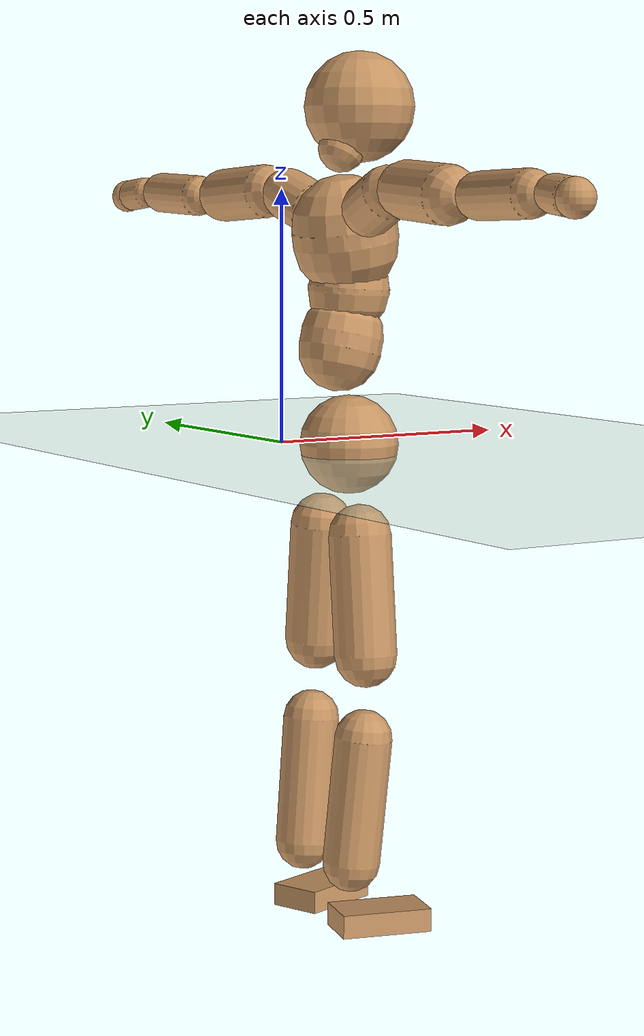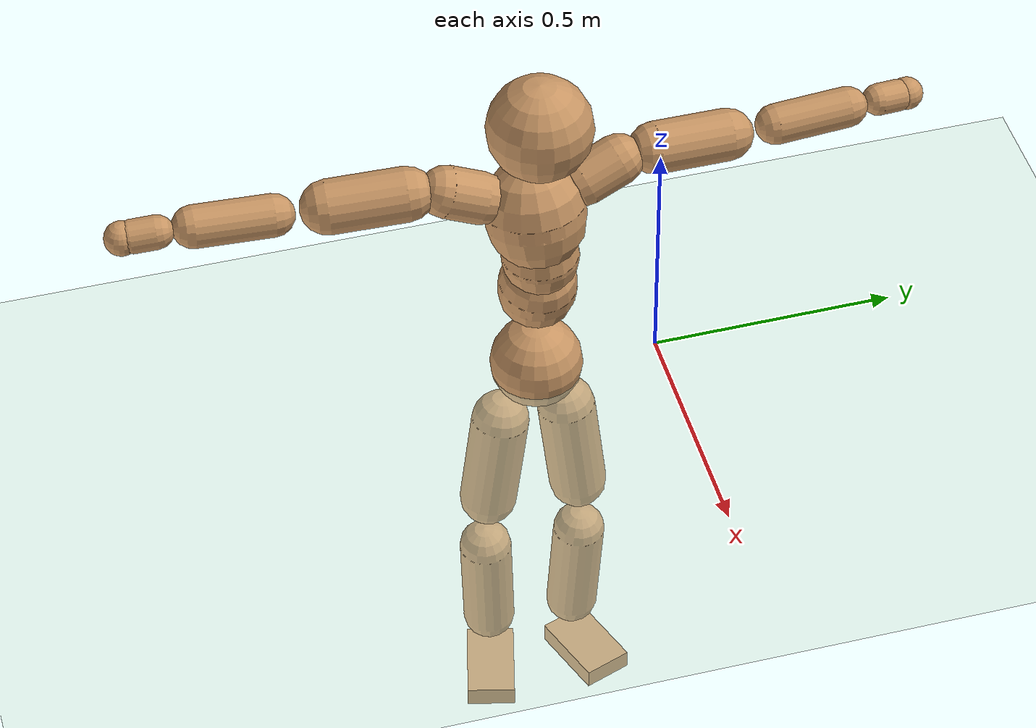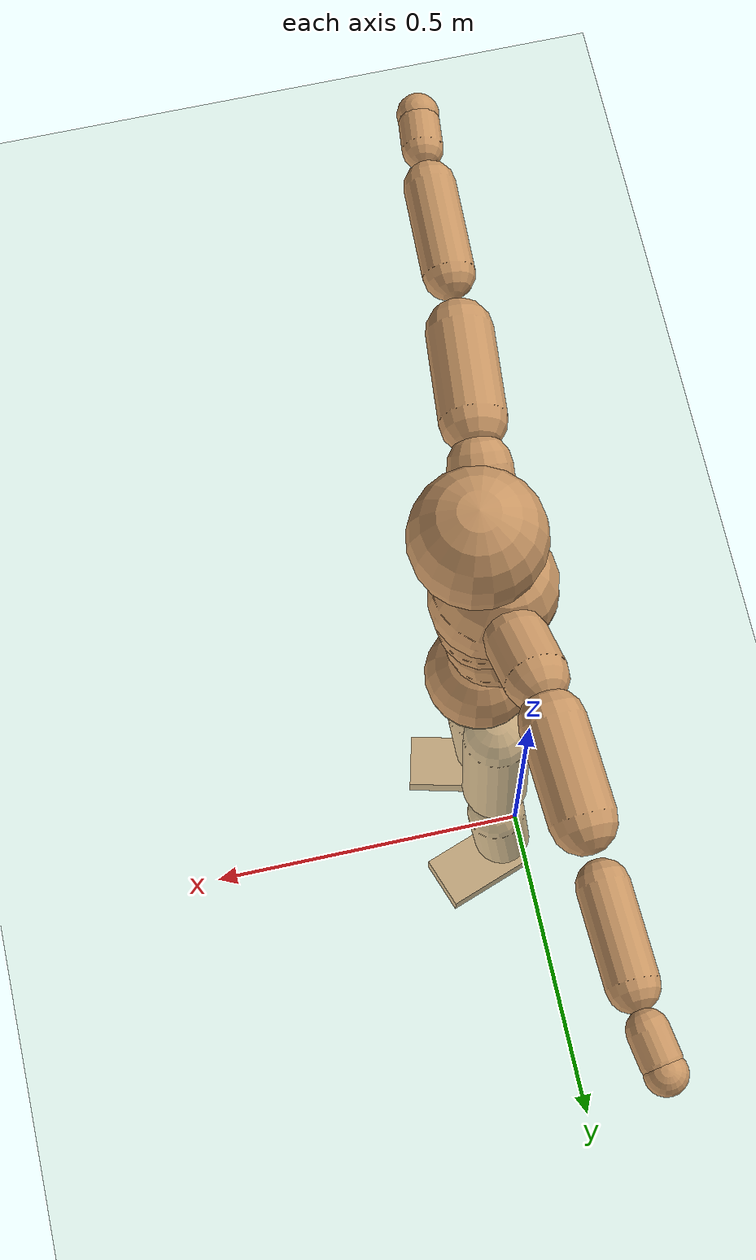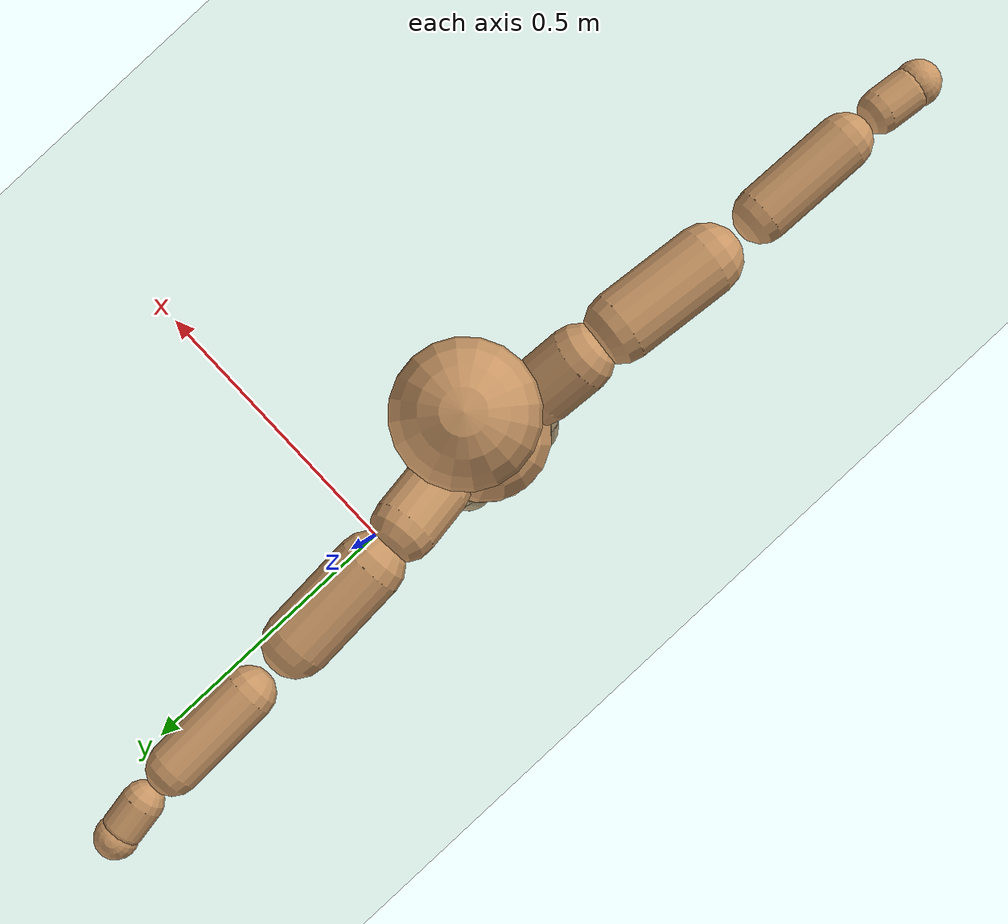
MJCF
<mujoco model="humanoid">
  <compiler coordinate="local" angle="radian"/>
  <default>
    <joint damping="0.0" armature="0.01" stiffness="0.0" limited="true"/>
    <geom conaffinity="1" condim="3" contype="7" margin="0.001" rgba="0.8 0.6 .4 1"/>
  </default>
  <asset>
    <texture type="skybox" builtin="gradient" rgb1=".4 .5 .6" rgb2="0 0 0" width="100" height="100"/>
    <texture builtin="flat" height="1278" mark="cross" markrgb="1 1 1" name="texgeom" random="0.01" rgb1="0.8 0.6 0.4" rgb2="0.8 0.6 0.4" type="cube" width="127"/>
    <texture builtin="checker" height="100" name="texplane" rgb1="0 0 0" rgb2="0.8 0.8 0.8" type="2d" width="100"/>
    <material name="MatPlane" reflectance="0.5" shininess="1" specular="1" texrepeat="60 60" texture="texplane"/>
    <material name="geom" texture="texgeom" texuniform="true"/>
  </asset>
  <worldbody>
    <light cutoff="100" diffuse="1 1 1" dir="-0 0 -1.3" directional="true" exponent="1" pos="0 0 1.3" specular=".1 .1 .1"/>
    <geom conaffinity="1" condim="3" name="floor" pos="0 0 0" rgba="0.8 0.9 0.8 1" size="100 100 .2" type="plane" material="MatPlane"/>
    <body name="Pelvis" pos="0.0025 -0.25 0.0184">
      <freejoint name="Pelvis"/>
      <geom type="sphere" contype="1" conaffinity="1" density="500" size="0.0945" pos="0.0000 0.0000 0.0000" name="Pelvis"/>
      <body name="L_Hip" pos="-0.0205 0.0595 -0.0828">
        <joint name="L_Hip_x" type="hinge" pos="0 0 0" axis="1 0 0" stiffness="800" damping="80" armature="0.02" range="-180.0000 180.0000"/>
        <joint name="L_Hip_y" type="hinge" pos="0 0 0" axis="0 1 0" stiffness="800" damping="80" armature="0.02" range="-180.0000 180.0000"/>
        <joint name="L_Hip_z" type="hinge" pos="0 0 0" axis="0 0 1" stiffness="800" damping="80" armature="0.02" range="-180.0000 180.0000"/>
        <geom type="capsule" contype="1" conaffinity="1" density="500" fromto="0.0008 0.0087 -0.0762 0.0032 0.0348 -0.3047" size="0.0596" name="L_Hip"/>
        <body name="L_Knee" pos="0.0039 0.0434 -0.3809">
          <joint name="L_Knee_x" type="hinge" pos="0 0 0" axis="1 0 0" stiffness="800" damping="80" armature="0.02" range="-180.0000 180.0000"/>
          <joint name="L_Knee_y" type="hinge" pos="0 0 0" axis="0 1 0" stiffness="800" damping="80" armature="0.02" range="-180.0000 180.0000"/>
          <joint name="L_Knee_z" type="hinge" pos="0 0 0" axis="0 0 1" stiffness="800" damping="80" armature="0.02" range="-180.0000 180.0000"/>
          <geom type="capsule" contype="1" conaffinity="1" density="500" fromto="-0.0075 -0.0027 -0.0812 -0.0300 -0.0108 -0.3247" size="0.0542" name="L_Knee"/>
          <body name="L_Ankle" pos="-0.0375 -0.0136 -0.4059">
            <joint name="L_Ankle_x" type="hinge" pos="0 0 0" axis="1 0 0" stiffness="800" damping="80" armature="0.02" range="-180.0000 180.0000"/>
            <joint name="L_Ankle_y" type="hinge" pos="0 0 0" axis="0 1 0" stiffness="800" damping="80" armature="0.02" range="-180.0000 180.0000"/>
            <joint name="L_Ankle_z" type="hinge" pos="0 0 0" axis="0 0 1" stiffness="800" damping="80" armature="0.02" range="-180.0000 180.0000"/>
            <geom type="box" contype="1" conaffinity="1" density="500" pos="0.0593 0.0212 -0.0292" size="0.0833 0.0514 0.0214" quat="0.9853 0.0000 0.0000 0.1706" name="L_Ankle"/>
            <body name="L_Toe" pos="0.1185 0.0423 -0.0584">
              <joint name="L_Toe_x" type="hinge" pos="0 0 0" axis="1 0 0" stiffness="500" damping="50" armature="0.02" range="-180.0000 180.0000"/>
              <joint name="L_Toe_y" type="hinge" pos="0 0 0" axis="0 1 0" stiffness="500" damping="50" armature="0.02" range="-180.0000 180.0000"/>
              <joint name="L_Toe_z" type="hinge" pos="0 0 0" axis="0 0 1" stiffness="500" damping="50" armature="0.02" range="-180.0000 180.0000"/>
              <geom type="box" contype="1" conaffinity="1" density="500" pos="0.0000 0.0000 0.0297" size="0.001 0.0024 0.0011" quat="0.9845 0.0000 0.0000 0.1753" name="L_Toe"/>
            </body>
          </body>
        </body>
      </body>
      <body name="R_Hip" pos="-0.0182 -0.0617 -0.0903">
        <joint name="R_Hip_x" type="hinge" pos="0 0 0" axis="1 0 0" stiffness="800" damping="80" armature="0.02" range="-180.0000 180.0000"/>
        <joint name="R_Hip_y" type="hinge" pos="0 0 0" axis="0 1 0" stiffness="800" damping="80" armature="0.02" range="-180.0000 180.0000"/>
        <joint name="R_Hip_z" type="hinge" pos="0 0 0" axis="0 0 1" stiffness="800" damping="80" armature="0.02" range="-180.0000 180.0000"/>
        <geom type="capsule" contype="1" conaffinity="1" density="500" fromto="-0.0011 -0.0090 -0.0755 -0.0046 -0.0359 -0.3022" size="0.0594" name="R_Hip"/>
        <body name="R_Knee" pos="-0.0057 -0.0449 -0.3777">
          <joint name="R_Knee_x" type="hinge" pos="0 0 0" axis="1 0 0" stiffness="800" damping="80" armature="0.02" range="-180.0000 180.0000"/>
          <joint name="R_Knee_y" type="hinge" pos="0 0 0" axis="0 1 0" stiffness="800" damping="80" armature="0.02" range="-180.0000 180.0000"/>
          <joint name="R_Knee_z" type="hinge" pos="0 0 0" axis="0 0 1" stiffness="800" damping="80" armature="0.02" range="-180.0000 180.0000"/>
          <geom type="capsule" contype="1" conaffinity="1" density="500" fromto="-0.0068 0.0037 -0.0802 -0.0270 0.0146 -0.3208" size="0.0547" name="R_Knee"/>
          <body name="R_Ankle" pos="-0.0338 0.0183 -0.4009">
            <joint name="R_Ankle_x" type="hinge" pos="0 0 0" axis="1 0 0" stiffness="800" damping="80" armature="0.02" range="-180.0000 180.0000"/>
            <joint name="R_Ankle_y" type="hinge" pos="0 0 0" axis="0 1 0" stiffness="800" damping="80" armature="0.02" range="-180.0000 180.0000"/>
            <joint name="R_Ankle_z" type="hinge" pos="0 0 0" axis="0 0 1" stiffness="800" damping="80" armature="0.02" range="-180.0000 180.0000"/>
            <geom type="box" contype="1" conaffinity="1" density="500" pos="0.0631 -0.0158 -0.0315" size="0.0875 0.0504 0.0221" quat="0.9925 0.0000 0.0000 -0.1223" name="R_Ankle"/>
            <body name="R_Toe" pos="0.1261 -0.0316 -0.063">
              <joint name="R_Toe_x" type="hinge" pos="0 0 0" axis="1 0 0" stiffness="500" damping="50" armature="0.02" range="-180.0000 180.0000"/>
              <joint name="R_Toe_y" type="hinge" pos="0 0 0" axis="0 1 0" stiffness="500" damping="50" armature="0.02" range="-180.0000 180.0000"/>
              <joint name="R_Toe_z" type="hinge" pos="0 0 0" axis="0 0 1" stiffness="500" damping="50" armature="0.02" range="-180.0000 180.0000"/>
              <geom type="box" contype="1" conaffinity="1" density="500" pos="0.0000 0.0000 0.0330" size="0.001 0.0025 0.0012" quat="0.9936 0.0000 0.0000 -0.1132" name="R_Toe"/>
            </body>
          </body>
        </body>
      </body>
      <body name="Torso" pos="-0.0305 0.004 0.1236">
        <joint name="Torso_x" type="hinge" pos="0 0 0" axis="1 0 0" stiffness="1000" damping="100" armature="0.02" range="-180.0000 180.0000"/>
        <joint name="Torso_y" type="hinge" pos="0 0 0" axis="0 1 0" stiffness="1000" damping="100" armature="0.02" range="-180.0000 180.0000"/>
        <joint name="Torso_z" type="hinge" pos="0 0 0" axis="0 0 1" stiffness="1000" damping="100" armature="0.02" range="-180.0000 180.0000"/>
        <geom type="capsule" contype="1" conaffinity="1" density="500" fromto="0.0195 0.0025 0.0847 0.0130 0.0017 0.0564" size="0.0788" name="Torso"/>
        <body name="Spine" pos="0.0324 0.0042 0.1411">
          <joint name="Spine_x" type="hinge" pos="0 0 0" axis="1 0 0" stiffness="1000" damping="100" armature="0.02" range="-180.0000 180.0000"/>
          <joint name="Spine_y" type="hinge" pos="0 0 0" axis="0 1 0" stiffness="1000" damping="100" armature="0.02" range="-180.0000 180.0000"/>
          <joint name="Spine_z" type="hinge" pos="0 0 0" axis="0 0 1" stiffness="1000" damping="100" armature="0.02" range="-180.0000 180.0000"/>
          <geom type="capsule" contype="1" conaffinity="1" density="500" fromto="0.0018 -0.0020 0.0343 0.0012 -0.0014 0.0229" size="0.0778" name="Spine"/>
          <body name="Chest" pos="0.0029 -0.0034 0.0572">
            <joint name="Chest_x" type="hinge" pos="0 0 0" axis="1 0 0" stiffness="1000" damping="100" armature="0.02" range="-180.0000 180.0000"/>
            <joint name="Chest_y" type="hinge" pos="0 0 0" axis="0 1 0" stiffness="1000" damping="100" armature="0.02" range="-180.0000 180.0000"/>
            <joint name="Chest_z" type="hinge" pos="0 0 0" axis="0 0 1" stiffness="1000" damping="100" armature="0.02" range="-180.0000 180.0000"/>
            <geom type="capsule" contype="1" conaffinity="1" density="500" fromto="-0.0163 -0.0057 0.0891 -0.0109 -0.0038 0.0594" size="0.1004" name="Chest"/>
            <body name="Neck" pos="-0.0362 -0.0134 0.2172">
              <joint name="Neck_x" type="hinge" pos="0 0 0" axis="1 0 0" stiffness="500" damping="50" armature="0.02" range="-180.0000 180.0000"/>
              <joint name="Neck_y" type="hinge" pos="0 0 0" axis="0 1 0" stiffness="500" damping="50" armature="0.02" range="-180.0000 180.0000"/>
              <joint name="Neck_z" type="hinge" pos="0 0 0" axis="0 0 1" stiffness="500" damping="50" armature="0.02" range="-180.0000 180.0000"/>
              <geom type="capsule" contype="1" conaffinity="1" density="500" fromto="0.0108 0.0018 0.0194 0.0431 0.0073 0.0775" size="0.0452" name="Neck"/>
              <body name="Head" pos="0.0539 0.0092 0.0969">
                <joint name="Head_x" type="hinge" pos="0 0 0" axis="1 0 0" stiffness="500" damping="50" armature="0.02" range="-180.0000 180.0000"/>
                <joint name="Head_y" type="hinge" pos="0 0 0" axis="0 1 0" stiffness="500" damping="50" armature="0.02" range="-180.0000 180.0000"/>
                <joint name="Head_z" type="hinge" pos="0 0 0" axis="0 0 1" stiffness="500" damping="50" armature="0.02" range="-180.0000 180.0000"/>
                <geom type="sphere" contype="1" conaffinity="1" density="500" size="0.1048" pos="0.0000 0.0000 0.0000" name="Head"/>
              </body>
            </body>
            <body name="L_Thorax" pos="-0.0211 0.0716 0.1138">
              <joint name="L_Thorax_x" type="hinge" pos="0 0 0" axis="1 0 0" stiffness="500" damping="50" armature="0.02" range="-180.0000 180.0000"/>
              <joint name="L_Thorax_y" type="hinge" pos="0 0 0" axis="0 1 0" stiffness="500" damping="50" armature="0.02" range="-180.0000 180.0000"/>
              <joint name="L_Thorax_z" type="hinge" pos="0 0 0" axis="0 0 1" stiffness="500" damping="50" armature="0.02" range="-180.0000 180.0000"/>
              <geom type="capsule" contype="1" conaffinity="1" density="500" fromto="-0.0036 0.0242 0.0091 -0.0146 0.0968 0.0365" size="0.0509" name="L_Thorax"/>
              <body name="L_Shoulder" pos="-0.0182 0.121 0.0456">
                <joint name="L_Shoulder_x" type="hinge" pos="0 0 0" axis="1 0 0" stiffness="500" damping="50" armature="0.02" range="-720.0000 720.0000"/>
                <joint name="L_Shoulder_y" type="hinge" pos="0 0 0" axis="0 1 0" stiffness="500" damping="50" armature="0.02" range="-720.0000 720.0000"/>
                <joint name="L_Shoulder_z" type="hinge" pos="0 0 0" axis="0 0 1" stiffness="500" damping="50" armature="0.02" range="-720.0000 720.0000"/>
                <geom type="capsule" contype="1" conaffinity="1" density="500" fromto="-0.0031 0.0504 -0.0029 -0.0126 0.2016 -0.0116" size="0.0521" name="L_Shoulder"/>
                <body name="L_Elbow" pos="-0.0157 0.2521 -0.0145">
                  <joint name="L_Elbow_x" type="hinge" pos="0 0 0" axis="1 0 0" stiffness="500" damping="50" armature="0.02" range="-720.0000 720.0000"/>
                  <joint name="L_Elbow_y" type="hinge" pos="0 0 0" axis="0 1 0" stiffness="500" damping="50" armature="0.02" range="-720.0000 720.0000"/>
                  <joint name="L_Elbow_z" type="hinge" pos="0 0 0" axis="0 0 1" stiffness="500" damping="50" armature="0.02" range="-720.0000 720.0000"/>
                  <geom type="capsule" contype="1" conaffinity="1" density="500" fromto="-0.0019 0.0498 0.0020 -0.0075 0.1992 0.0079" size="0.0407" name="L_Elbow"/>
                  <body name="L_Wrist" pos="-0.0094 0.249 0.0099">
                    <joint name="L_Wrist_x" type="hinge" pos="0 0 0" axis="1 0 0" stiffness="300" damping="30" armature="0.02" range="-180.0000 180.0000"/>
                    <joint name="L_Wrist_y" type="hinge" pos="0 0 0" axis="0 1 0" stiffness="300" damping="30" armature="0.02" range="-180.0000 180.0000"/>
                    <joint name="L_Wrist_z" type="hinge" pos="0 0 0" axis="0 0 1" stiffness="300" damping="30" armature="0.02" range="-180.0000 180.0000"/>
                    <geom type="capsule" contype="1" conaffinity="1" density="500" fromto="-0.0028 0.0160 -0.0019 -0.0113 0.0638 -0.0078" size="0.0318" name="L_Wrist"/>
                    <body name="L_Hand" pos="-0.0141 0.0798 -0.0097">
                      <joint name="L_Hand_x" type="hinge" pos="0 0 0" axis="1 0 0" stiffness="300" damping="30" armature="0.02" range="-180.0000 180.0000"/>
                      <joint name="L_Hand_y" type="hinge" pos="0 0 0" axis="0 1 0" stiffness="300" damping="30" armature="0.02" range="-180.0000 180.0000"/>
                      <joint name="L_Hand_z" type="hinge" pos="0 0 0" axis="0 0 1" stiffness="300" damping="30" armature="0.02" range="-180.0000 180.0000"/>
                      <geom type="sphere" contype="1" conaffinity="1" density="500" size="0.0329" pos="0.0000 0.0000 0.0000" name="L_Hand"/>
                    </body>
                  </body>
                </body>
              </body>
            </body>
            <body name="R_Thorax" pos="-0.0243 -0.0864 0.1144">
              <joint name="R_Thorax_x" type="hinge" pos="0 0 0" axis="1 0 0" stiffness="500" damping="50" armature="0.02" range="-180.0000 180.0000"/>
              <joint name="R_Thorax_y" type="hinge" pos="0 0 0" axis="0 1 0" stiffness="500" damping="50" armature="0.02" range="-180.0000 180.0000"/>
              <joint name="R_Thorax_z" type="hinge" pos="0 0 0" axis="0 0 1" stiffness="500" damping="50" armature="0.02" range="-180.0000 180.0000"/>
              <geom type="capsule" contype="1" conaffinity="1" density="500" fromto="-0.0015 -0.0230 0.0096 -0.0060 -0.0919 0.0385" size="0.052" name="R_Thorax"/>
              <body name="R_Shoulder" pos="-0.0075 -0.1148 0.0481">
                <joint name="R_Shoulder_x" type="hinge" pos="0 0 0" axis="1 0 0" stiffness="500" damping="50" armature="0.02" range="-720.0000 720.0000"/>
                <joint name="R_Shoulder_y" type="hinge" pos="0 0 0" axis="0 1 0" stiffness="500" damping="50" armature="0.02" range="-720.0000 720.0000"/>
                <joint name="R_Shoulder_z" type="hinge" pos="0 0 0" axis="0 0 1" stiffness="500" damping="50" armature="0.02" range="-720.0000 720.0000"/>
                <geom type="capsule" contype="1" conaffinity="1" density="500" fromto="-0.0048 -0.0515 -0.0030 -0.0190 -0.2061 -0.0119" size="0.0543" name="R_Shoulder"/>
                <body name="R_Elbow" pos="-0.0238 -0.2577 -0.0149">
                  <joint name="R_Elbow_x" type="hinge" pos="0 0 0" axis="1 0 0" stiffness="500" damping="50" armature="0.02" range="-720.0000 720.0000"/>
                  <joint name="R_Elbow_y" type="hinge" pos="0 0 0" axis="0 1 0" stiffness="500" damping="50" armature="0.02" range="-720.0000 720.0000"/>
                  <joint name="R_Elbow_z" type="hinge" pos="0 0 0" axis="0 0 1" stiffness="500" damping="50" armature="0.02" range="-720.0000 720.0000"/>
                  <geom type="capsule" contype="1" conaffinity="1" density="500" fromto="-0.0014 -0.0518 0.0015 -0.0057 -0.2073 0.0060" size="0.0425" name="R_Elbow"/>
                  <body name="R_Wrist" pos="-0.0071 -0.2591 0.0075">
                    <joint name="R_Wrist_x" type="hinge" pos="0 0 0" axis="1 0 0" stiffness="300" damping="30" armature="0.02" range="-180.0000 180.0000"/>
                    <joint name="R_Wrist_y" type="hinge" pos="0 0 0" axis="0 1 0" stiffness="300" damping="30" armature="0.02" range="-180.0000 180.0000"/>
                    <joint name="R_Wrist_z" type="hinge" pos="0 0 0" axis="0 0 1" stiffness="300" damping="30" armature="0.02" range="-180.0000 180.0000"/>
                    <geom type="capsule" contype="1" conaffinity="1" density="500" fromto="-0.0019 -0.0169 -0.0016 -0.0074 -0.0677 -0.0064" size="0.0335" name="R_Wrist"/>
                    <body name="R_Hand" pos="-0.0093 -0.0846 -0.008">
                      <joint name="R_Hand_x" type="hinge" pos="0 0 0" axis="1 0 0" stiffness="300" damping="30" armature="0.02" range="-180.0000 180.0000"/>
                      <joint name="R_Hand_y" type="hinge" pos="0 0 0" axis="0 1 0" stiffness="300" damping="30" armature="0.02" range="-180.0000 180.0000"/>
                      <joint name="R_Hand_z" type="hinge" pos="0 0 0" axis="0 0 1" stiffness="300" damping="30" armature="0.02" range="-180.0000 180.0000"/>
                      <geom type="sphere" contype="1" conaffinity="1" density="500" size="0.0345" pos="0.0000 0.0000 0.0000" name="R_Hand"/>
                    </body>
                  </body>
                </body>
              </body>
            </body>
          </body>
        </body>
      </body>
    </body>
  </worldbody>
  <actuator>
    <motor name="L_Hip_x" joint="L_Hip_x" gear="500"/>
    <motor name="L_Hip_y" joint="L_Hip_y" gear="500"/>
    <motor name="L_Hip_z" joint="L_Hip_z" gear="500"/>
    <motor name="L_Knee_x" joint="L_Knee_x" gear="500"/>
    <motor name="L_Knee_y" joint="L_Knee_y" gear="500"/>
    <motor name="L_Knee_z" joint="L_Knee_z" gear="500"/>
    <motor name="L_Ankle_x" joint="L_Ankle_x" gear="500"/>
    <motor name="L_Ankle_y" joint="L_Ankle_y" gear="500"/>
    <motor name="L_Ankle_z" joint="L_Ankle_z" gear="500"/>
    <motor name="L_Toe_x" joint="L_Toe_x" gear="500"/>
    <motor name="L_Toe_y" joint="L_Toe_y" gear="500"/>
    <motor name="L_Toe_z" joint="L_Toe_z" gear="500"/>
    <motor name="R_Hip_x" joint="R_Hip_x" gear="500"/>
    <motor name="R_Hip_y" joint="R_Hip_y" gear="500"/>
    <motor name="R_Hip_z" joint="R_Hip_z" gear="500"/>
    <motor name="R_Knee_x" joint="R_Knee_x" gear="500"/>
    <motor name="R_Knee_y" joint="R_Knee_y" gear="500"/>
    <motor name="R_Knee_z" joint="R_Knee_z" gear="500"/>
    <motor name="R_Ankle_x" joint="R_Ankle_x" gear="500"/>
    <motor name="R_Ankle_y" joint="R_Ankle_y" gear="500"/>
    <motor name="R_Ankle_z" joint="R_Ankle_z" gear="500"/>
    <motor name="R_Toe_x" joint="R_Toe_x" gear="500"/>
    <motor name="R_Toe_y" joint="R_Toe_y" gear="500"/>
    <motor name="R_Toe_z" joint="R_Toe_z" gear="500"/>
    <motor name="Torso_x" joint="Torso_x" gear="500"/>
    <motor name="Torso_y" joint="Torso_y" gear="500"/>
    <motor name="Torso_z" joint="Torso_z" gear="500"/>
    <motor name="Spine_x" joint="Spine_x" gear="500"/>
    <motor name="Spine_y" joint="Spine_y" gear="500"/>
    <motor name="Spine_z" joint="Spine_z" gear="500"/>
    <motor name="Chest_x" joint="Chest_x" gear="500"/>
    <motor name="Chest_y" joint="Chest_y" gear="500"/>
    <motor name="Chest_z" joint="Chest_z" gear="500"/>
    <motor name="Neck_x" joint="Neck_x" gear="500"/>
    <motor name="Neck_y" joint="Neck_y" gear="500"/>
    <motor name="Neck_z" joint="Neck_z" gear="500"/>
    <motor name="Head_x" joint="Head_x" gear="500"/>
    <motor name="Head_y" joint="Head_y" gear="500"/>
    <motor name="Head_z" joint="Head_z" gear="500"/>
    <motor name="L_Thorax_x" joint="L_Thorax_x" gear="500"/>
    <motor name="L_Thorax_y" joint="L_Thorax_y" gear="500"/>
    <motor name="L_Thorax_z" joint="L_Thorax_z" gear="500"/>
    <motor name="L_Shoulder_x" joint="L_Shoulder_x" gear="500"/>
    <motor name="L_Shoulder_y" joint="L_Shoulder_y" gear="500"/>
    <motor name="L_Shoulder_z" joint="L_Shoulder_z" gear="500"/>
    <motor name="L_Elbow_x" joint="L_Elbow_x" gear="500"/>
    <motor name="L_Elbow_y" joint="L_Elbow_y" gear="500"/>
    <motor name="L_Elbow_z" joint="L_Elbow_z" gear="500"/>
    <motor name="L_Wrist_x" joint="L_Wrist_x" gear="500"/>
    <motor name="L_Wrist_y" joint="L_Wrist_y" gear="500"/>
    <motor name="L_Wrist_z" joint="L_Wrist_z" gear="500"/>
    <motor name="L_Hand_x" joint="L_Hand_x" gear="500"/>
    <motor name="L_Hand_y" joint="L_Hand_y" gear="500"/>
    <motor name="L_Hand_z" joint="L_Hand_z" gear="500"/>
    <motor name="R_Thorax_x" joint="R_Thorax_x" gear="500"/>
    <motor name="R_Thorax_y" joint="R_Thorax_y" gear="500"/>
    <motor name="R_Thorax_z" joint="R_Thorax_z" gear="500"/>
    <motor name="R_Shoulder_x" joint="R_Shoulder_x" gear="500"/>
    <motor name="R_Shoulder_y" joint="R_Shoulder_y" gear="500"/>
    <motor name="R_Shoulder_z" joint="R_Shoulder_z" gear="500"/>
    <motor name="R_Elbow_x" joint="R_Elbow_x" gear="500"/>
    <motor name="R_Elbow_y" joint="R_Elbow_y" gear="500"/>
    <motor name="R_Elbow_z" joint="R_Elbow_z" gear="500"/>
    <motor name="R_Wrist_x" joint="R_Wrist_x" gear="500"/>
    <motor name="R_Wrist_y" joint="R_Wrist_y" gear="500"/>
    <motor name="R_Wrist_z" joint="R_Wrist_z" gear="500"/>
    <motor name="R_Hand_x" joint="R_Hand_x" gear="500"/>
    <motor name="R_Hand_y" joint="R_Hand_y" gear="500"/>
    <motor name="R_Hand_z" joint="R_Hand_z" gear="500"/>
  </actuator>
  <contact>
    <exclude body1="Torso" body2="Chest"/>
    <exclude body1="Head" body2="Chest"/>
    <exclude body1="R_Knee" body2="R_Toe"/>
    <exclude body1="R_Knee" body2="L_Ankle"/>
    <exclude body1="R_Knee" body2="L_Toe"/>
    <exclude body1="L_Knee" body2="L_Toe"/>
    <exclude body1="L_Knee" body2="R_Ankle"/>
    <exclude body1="L_Knee" body2="R_Toe"/>
    <exclude body1="L_Shoulder" body2="Chest"/>
    <exclude body1="R_Shoulder" body2="Chest"/>
  </contact>
  <sensor/>
  <size njmax="700" nconmax="700"/>
</mujoco>
